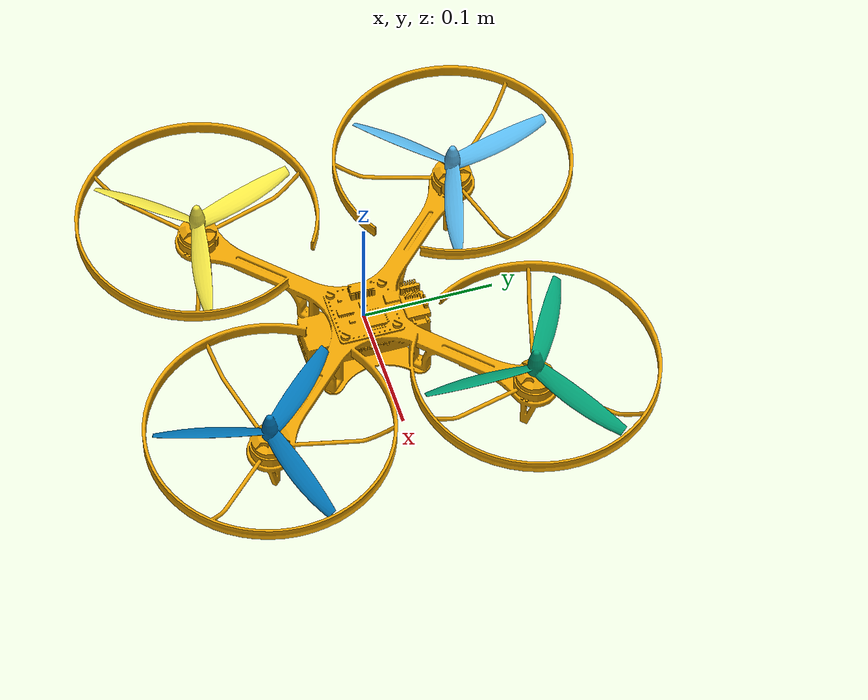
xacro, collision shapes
<?xml version="1.0" encoding="utf-8"?>
<robot xmlns:xacro="http://www.ros.org/wiki/xacro" name="drone_model">

  <!-- Global origin orientation -->
  <xacro:property name="origin_xyz" value="0 0 0" />
  <xacro:property name="origin_rpy" value="0 0 0" />

  <!-- Define global limits -->
  <xacro:property name="lower_limit" value="-3.14" />
  <xacro:property name="upper_limit" value="3.14" />
  <xacro:property name="effort_limit" value="100" />
  <xacro:property name="velocity_limit" value="100" />

  <!-- Define base_link macros properties -->
  <xacro:property name="base_link_xyz" value="-9.1847336179729E-05 0.000415033617555904 -0.000995363919215286" />
  <xacro:property name="base_link_rpy" value="0 0 0" />
  <xacro:property name="base_link_mass" value="0.254307892771006" />
  <xacro:property name="base_link_ixx" value="0.00058785819039432" />
  <xacro:property name="base_link_ixy" value="1.59211619501172E-07" />
  <xacro:property name="base_link_ixz" value="7.61062796150718E-08" />
  <xacro:property name="base_link_iyy" value="0.000540510823170516" />
  <xacro:property name="base_link_iyz" value="-2.06165469438771E-08" />
  <xacro:property name="base_link_izz" value="0.00109842132129949" />

  <!-- Define base_link meshes -->
  <xacro:property name="base_link_visual" value="/home/nidhood/Desktop/SWARN_PROJECT/src/drone_model/meshes/visuals/base_link.dae"/>
  <xacro:property name="base_link_collision" value="/home/nidhood/Desktop/SWARN_PROJECT/src/drone_model/meshes/collisions/base_link.stl"/>

  <!-- Define base_link properties -->
  <link name="base_link">

    <inertial>
      <origin xyz="${base_link_xyz}" rpy="${base_link_rpy}" />
      <mass value="${base_link_mass}" />
      <inertia ixx="${base_link_ixx}" ixy="${base_link_ixy}" ixz="${base_link_ixz}" iyy="${base_link_iyy}" iyz="${base_link_iyz}" izz="${base_link_izz}" />
    </inertial>

    <visual name="base_link_visual">
      <origin xyz="${origin_xyz}" rpy="${origin_rpy}" />
      <geometry>
        <mesh filename="${base_link_visual}" />
      </geometry>
    </visual>

    <collision name="base_link_collision">
      <origin xyz="${origin_xyz}" rpy="${origin_rpy}" />
      <geometry>
        <mesh filename="${base_link_collision}" />
      </geometry>
    </collision>

  </link>

  <!-- Define prop_forwards_left_link macros properties -->
  <xacro:property name="prop_forwards_left_link_xyz" value="5.71642894409141E-07 -8.54929965155016E-08 0.0018576502110494" />
  <xacro:property name="prop_forwards_left_link_rpy" value="0 0 0" />
  <xacro:property name="prop_forwards_left_link_mass" value="0.00622580390535254" />
  <xacro:property name="prop_forwards_left_link_ixx" value="4.65686406510033E-06" />
  <xacro:property name="prop_forwards_left_link_ixy" value="1.40233492263942E-10" />
  <xacro:property name="prop_forwards_left_link_ixz" value="-2.825811940744E-12" />
  <xacro:property name="prop_forwards_left_link_iyy" value="4.65632288664103E-06" />
  <xacro:property name="prop_forwards_left_link_iyz" value="-2.90803707417964E-12" />
  <xacro:property name="prop_forwards_left_link_izz" value="9.1283491808267E-06" />

  <!-- Define prop_forwards_left_link meshes -->
  <xacro:property name="prop_forwards_left_link_visual" value="/home/nidhood/Desktop/SWARN_PROJECT/src/drone_model/meshes/visuals/prop_forwards_left_link.dae"/>
  <xacro:property name="prop_forwards_left_link_collision" value="/home/nidhood/Desktop/SWARN_PROJECT/src/drone_model/meshes/collisions/prop_forwards_left_link.stl"/>

  <!-- Define prop_forwards_left_link properties -->
  <link name="prop_forwards_left_link">

    <inertial>
      <origin xyz="${prop_forwards_left_link_xyz}" rpy="${prop_forwards_left_link_rpy}" />
      <mass value="${prop_forwards_left_link_mass}" />
      <inertia ixx="${prop_forwards_left_link_ixx}" ixy="${prop_forwards_left_link_ixy}" ixz="${prop_forwards_left_link_ixz}" iyy="${prop_forwards_left_link_iyy}" iyz="${prop_forwards_left_link_iyz}" izz="${prop_forwards_left_link_izz}" />
    </inertial>

    <visual name="prop_forwards_left_link_visual">
      <origin xyz="${origin_xyz}" rpy="${origin_rpy}" />
      <geometry>
        <mesh filename="${prop_forwards_left_link_visual}" />
      </geometry>
    </visual>

    <collision name="prop_forwards_left_link_collision">
      <origin xyz="${origin_xyz}" rpy="${origin_rpy}" />
      <geometry>
        <mesh filename="${prop_forwards_left_link_collision}" />
      </geometry>
    </collision>

  </link>

  <!-- Define prop_forwards_left_link joint configuration -->
  <xacro:property name="prop_forwards_left_link_joint_xyz" value="-0.1 0.099994 0.026497" />
  <xacro:property name="prop_forwards_left_link_joint_rpy" value="0 0 2.3562" />

  <!-- Define prop_forwards_left_link joint -->
  <joint name="joint_prop_forwards_left_link" type="continuous">

    <origin xyz="${prop_forwards_left_link_joint_xyz}" rpy="${prop_forwards_left_link_joint_rpy}" />
    <parent link="base_link" />
    <child link="prop_forwards_left_link" />
    <axis xyz="0 0 1" />
    <limit lower="${lower_limit}" upper="${upper_limit}" effort="${effort_limit}" velocity="${velocity_limit}" />

  </joint>

  <!-- Define prop_forwards_right_link macros properties -->
  <xacro:property name="prop_forwards_right_link_xyz" value="1.8738818703401E-06 5.88908199983251E-07 0.00185538704846844" />
  <xacro:property name="prop_forwards_right_link_rpy" value="0 0 0" />
  <xacro:property name="prop_forwards_right_link_mass" value="0.00624297252571192" />
  <xacro:property name="prop_forwards_right_link_ixx" value="4.64692804665044E-06" />
  <xacro:property name="prop_forwards_right_link_ixy" value="4.07667939979562E-11" />
  <xacro:property name="prop_forwards_right_link_ixz" value="-2.27433285772375E-12" />
  <xacro:property name="prop_forwards_right_link_iyy" value="4.64681400440729E-06" />
  <xacro:property name="prop_forwards_right_link_iyz" value="3.42071727923194E-12" />
  <xacro:property name="prop_forwards_right_link_izz" value="9.10876849788012E-06" />

  <!-- Define prop_forwards_right_link meshes -->
  <xacro:property name="prop_forwards_right_link_visual" value="/home/nidhood/Desktop/SWARN_PROJECT/src/drone_model/meshes/visuals/prop_forwards_right_link.dae"/>
  <xacro:property name="prop_forwards_right_link_collision" value="/home/nidhood/Desktop/SWARN_PROJECT/src/drone_model/meshes/collisions/prop_forwards_right_link.stl"/>

  <!-- Define prop_forwards_right_link properties -->
  <link name="prop_forwards_right_link">

    <inertial>
      <origin xyz="${prop_forwards_right_link_xyz}" rpy="${prop_forwards_right_link_rpy}" />
      <mass value="${prop_forwards_right_link_mass}" />
      <inertia ixx="${prop_forwards_right_link_ixx}" ixy="${prop_forwards_right_link_ixy}" ixz="${prop_forwards_right_link_ixz}" iyy="${prop_forwards_right_link_iyy}" iyz="${prop_forwards_right_link_iyz}" izz="${prop_forwards_right_link_izz}" />
    </inertial>

    <visual name="prop_forwards_right_link_visual">
      <origin xyz="${origin_xyz}" rpy="${origin_rpy}" />
      <geometry>
        <mesh filename="${prop_forwards_right_link_visual}" />
      </geometry>
    </visual>

    <collision name="prop_forwards_right_link_collision">
      <origin xyz="${origin_xyz}" rpy="${origin_rpy}" />
      <geometry>
        <mesh filename="${prop_forwards_right_link_collision}" />
      </geometry>
    </collision>

  </link>

  <!-- Define prop_forwards_right_link joint configuration -->
  <xacro:property name="prop_forwards_right_link_joint_xyz" value="0.099996 0.099994 0.026497" />
  <xacro:property name="prop_forwards_right_link_joint_rpy" value="0 0 1.0472" />

  <!-- Define prop_forwards_right_link joint -->
  <joint name="joint_prop_forwards_right_link" type="continuous">

    <origin xyz="${prop_forwards_right_link_joint_xyz}" rpy="${prop_forwards_right_link_joint_rpy}" />
    <parent link="base_link" />
    <child link="prop_forwards_right_link" />
    <axis xyz="0 0 1" />
    <limit lower="${lower_limit}" upper="${upper_limit}" effort="${effort_limit}" velocity="${velocity_limit}" />

  </joint>

  <!-- Define prop_backwards_left_link macros properties -->
  <xacro:property name="prop_backwards_left_link_xyz" value="2.15410762560708E-08 1.61355459735169E-06 0.00185541109629199" />
  <xacro:property name="prop_backwards_left_link_rpy" value="0 0 0" />
  <xacro:property name="prop_backwards_left_link_mass" value="0.00624270876455571" />
  <xacro:property name="prop_backwards_left_link_ixx" value="4.64681745240651E-06" />
  <xacro:property name="prop_backwards_left_link_ixy" value="-1.44696572929209E-10" />
  <xacro:property name="prop_backwards_left_link_ixz" value="1.00968266119727E-11" />
  <xacro:property name="prop_backwards_left_link_iyy" value="4.64678537606381E-06" />
  <xacro:property name="prop_backwards_left_link_iyz" value="-8.64251791103487E-12" />
  <xacro:property name="prop_backwards_left_link_izz" value="9.10862981269992E-06" />

  <!-- Define prop_backwards_left_link meshes -->
  <xacro:property name="prop_backwards_left_link_visual" value="/home/nidhood/Desktop/SWARN_PROJECT/src/drone_model/meshes/visuals/prop_backwards_left_link.dae"/>
  <xacro:property name="prop_backwards_left_link_collision" value="/home/nidhood/Desktop/SWARN_PROJECT/src/drone_model/meshes/collisions/prop_backwards_left_link.stl"/>

  <!-- Define prop_backwards_left_link properties -->
  <link name="prop_backwards_left_link">

    <inertial>
      <origin xyz="${prop_backwards_left_link_xyz}" rpy="${prop_backwards_left_link_rpy}" />
      <mass value="${prop_backwards_left_link_mass}" />
      <inertia ixx="${prop_backwards_left_link_ixx}" ixy="${prop_backwards_left_link_ixy}" ixz="${prop_backwards_left_link_ixz}" iyy="${prop_backwards_left_link_iyy}" iyz="${prop_backwards_left_link_iyz}" izz="${prop_backwards_left_link_izz}" />
    </inertial>

    <visual name="prop_backwards_left_link_visual">
      <origin xyz="${origin_xyz}" rpy="${origin_rpy}" />
      <geometry>
        <mesh filename="${prop_backwards_left_link_visual}" />
      </geometry>
    </visual>

    <collision name="prop_backwards_left_link_collision">
      <origin xyz="${origin_xyz}" rpy="${origin_rpy}" />
      <geometry>
        <mesh filename="${prop_backwards_left_link_collision}" />
      </geometry>
    </collision>

  </link>

  <!-- Define prop_backwards_left_link joint configuration -->
  <xacro:property name="prop_backwards_left_link_joint_xyz" value="-0.1 -0.1 0.026497" />
  <xacro:property name="prop_backwards_left_link_joint_rpy" value="0 0 0.34907" />

  <!-- Define prop_backwards_left_link joint -->
  <joint name="joint_prop_backwards_left_link" type="continuous">

    <origin xyz="${prop_backwards_left_link_joint_xyz}" rpy="${prop_backwards_left_link_joint_rpy}" />
    <parent link="base_link" />
    <child  link="prop_backwards_left_link" />
    <axis   xyz="0 0 1" />
    <limit  lower="${lower_limit}" upper="${upper_limit}" effort="${effort_limit}" velocity="${velocity_limit}" />

  </joint>

  <!-- Define prop_backwards_right_link macros properties -->
  <xacro:property name="prop_backwards_right_link_xyz"  value="4.12491299339734E-07 -1.6660399568269E-07 0.00185766204825996" />
  <xacro:property name="prop_backwards_right_link_rpy"  value="0 0 0" />
  <xacro:property name="prop_backwards_right_link_mass" value="0.00622582722578916" />
  <xacro:property name="prop_backwards_right_link_ixx"  value="4.65687500262372E-06" />
  <xacro:property name="prop_backwards_right_link_ixy"  value="1.17883588917842E-10" />
  <xacro:property name="prop_backwards_right_link_ixz"  value="-7.89848918095998E-15" />
  <xacro:property name="prop_backwards_right_link_iyy"  value="4.6563683794853E-06" />
  <xacro:property name="prop_backwards_right_link_iyz"  value="-1.13448664683346E-12" />
  <xacro:property name="prop_backwards_right_link_izz"  value="9.12840543730401E-06" />

  <!-- Define prop_backwards_right_link meshes -->
  <xacro:property name="prop_backwards_right_link_visual"     value="/home/nidhood/Desktop/SWARN_PROJECT/src/drone_model/meshes/visuals/prop_backwards_right_link.dae"/>
  <xacro:property name="prop_backwards_right_link_collision"  value="/home/nidhood/Desktop/SWARN_PROJECT/src/drone_model/meshes/collisions/prop_backwards_right_link.stl"/>

  <!-- Define prop_backwards_right_link properties -->
  <link name="prop_backwards_right_link">
    <inertial>
      <origin xyz="${prop_backwards_right_link_xyz}" rpy="${prop_backwards_right_link_rpy}" />
      <mass value="${prop_backwards_right_link_mass}" />
      <inertia ixx="${prop_backwards_right_link_ixx}" ixy="${prop_backwards_right_link_ixy}" ixz="${prop_backwards_right_link_ixz}" iyy="${prop_backwards_right_link_iyy}" iyz="${prop_backwards_right_link_iyz}" izz="${prop_backwards_right_link_izz}" />
    </inertial>

    <visual name="prop_backwards_right_link_visual">
      <origin xyz="${origin_xyz}" rpy="${origin_rpy}" />
      <geometry>
        <mesh filename="${prop_backwards_right_link_visual}" />
      </geometry>
    </visual>

    <collision name="prop_backwards_right_link_collision">
      <origin xyz="${origin_xyz}" rpy="${origin_rpy}" />
      <geometry>
        <mesh filename="${prop_backwards_right_link_collision}" />
      </geometry>
    </collision>

  </link>

  <!-- Define prop_backwards_right_link joint configuration -->
  <xacro:property name="prop_backwards_right_link_joint_xyz" value="0.099996 -0.1 0.026497" />
  <xacro:property name="prop_backwards_right_link_joint_rpy" value="0 0 0.7854" />

  <!-- Define prop_backwards_right_link joint -->
  <joint name="joint_prop_backwards_right_link" type="continuous">

    <origin xyz="${prop_backwards_right_link_joint_xyz}" rpy="${prop_backwards_right_link_joint_rpy}" />
    <parent link="base_link" />
    <child link="prop_backwards_right_link" />
    <axis xyz="0 0 1" />
    <limit lower="${lower_limit}" upper="${upper_limit}" effort="${effort_limit}" velocity="${velocity_limit}" />

  </joint>

</robot>
